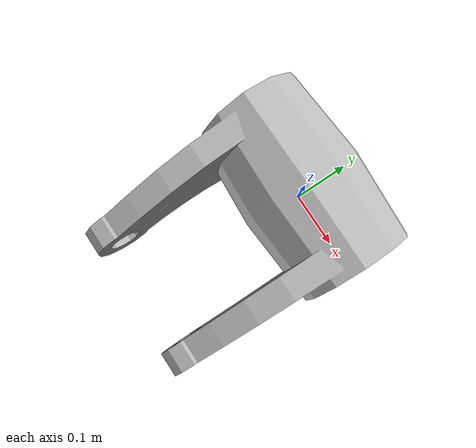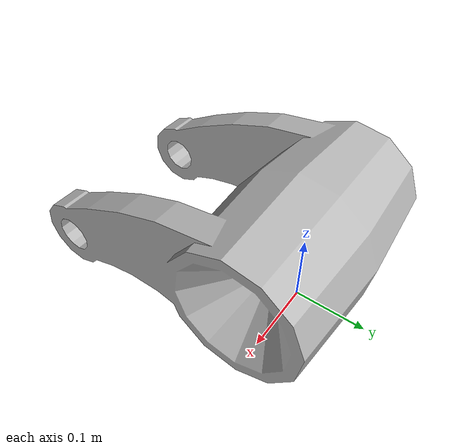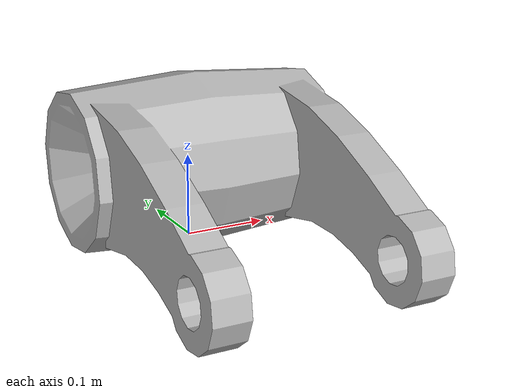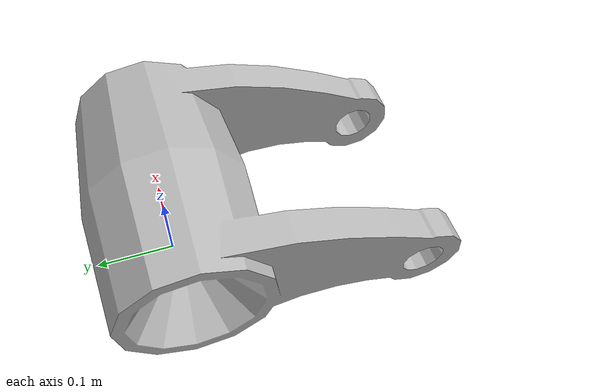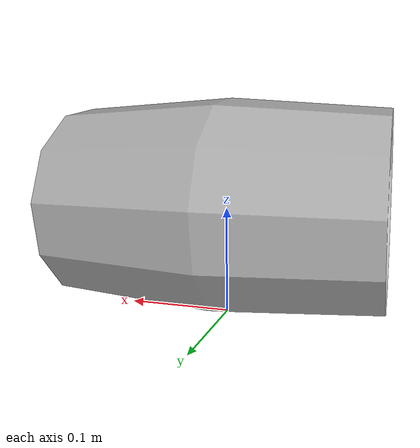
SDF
<?xml version="1.0" ?>
<sdf version="1.6">
  <model name="arm_part">
    <link name="link">
      <inertial>
        <pose>0 -0.12223 0.101835 0 0 0</pose>
        <mass>0.5</mass>
        <inertia>
          <ixx>0.00950655468</ixx>
          <ixy>0</ixy>
          <ixz>0</ixz>
          <iyy>0.0054345236</iyy>
          <iyz>0</iyz>
          <izz>0.01148428921</izz>
        </inertia>
      </inertial>

      <collision name="collision">
        <pose>0 -0.12223 0.101835 0 0 0</pose>
        <geometry>
          <box>
            <size>0.29824 0.43206 0.20367</size>
          </box>
        </geometry>
      </collision>
      <visual name="visual">
         <geometry>
           <mesh>
             <uri>model://arm_part/meshes/arm.dae</uri>
           </mesh>
         </geometry>
        <material>
          <script>
            <uri>model://arm_part/materials/scripts</uri>
            <uri>model://arm_part/materials/textures</uri>
            <name>ArmPart/Diffuse</name>
          </script>
        </material>
       </visual>
    </link>
  </model>
</sdf>
